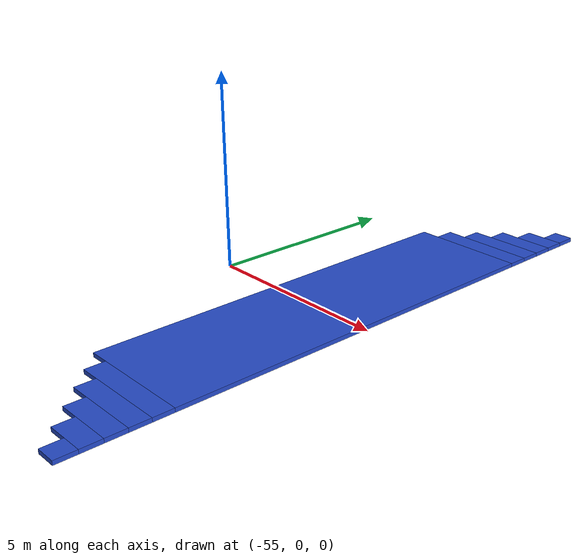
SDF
<sdf version="1.7">
 <world name="sehir_dunyasi_final_son_hali">
  <model name="durak_cebi_bati">
   <static>1</static>
   <pose>-50 0 0.1 0 -0 0</pose>
   <link name="link">
    <visual name="visual_center">
     <pose>-1.5 0 0 0 -0 0</pose>
     <geometry><box><size>3 10 0.1</size></box></geometry>
     <material><script><name>Gazebo/Blue</name><uri>__default__</uri></script></material>
    </visual>
    <collision name="collision_center">
     <pose>-1.5 0 0 0 -0 0</pose>
     <geometry><box><size>3 10 0.1</size></box></geometry>
    </collision>
    <visual name="v_t1">
     <pose>-1.25 5.25 0 0 -0 0</pose>
     <geometry><box><size>2.5 0.5 0.1</size></box></geometry>
     <material><script><name>Gazebo/Blue</name><uri>__default__</uri></script></material>
    </visual>
    <visual name="v_t2">
     <pose>-1 5.75 0 0 -0 0</pose>
     <geometry><box><size>2 0.5 0.1</size></box></geometry>
     <material><script><name>Gazebo/Blue</name><uri>__default__</uri></script></material>
    </visual>
    <visual name="v_t3">
     <pose>-0.75 6.25 0 0 -0 0</pose>
     <geometry><box><size>1.5 0.5 0.1</size></box></geometry>
     <material><script><name>Gazebo/Blue</name><uri>__default__</uri></script></material>
    </visual>
    <visual name="v_t4">
     <pose>-0.5 6.75 0 0 -0 0</pose>
     <geometry><box><size>1 0.5 0.1</size></box></geometry>
     <material><script><name>Gazebo/Blue</name><uri>__default__</uri></script></material>
    </visual>
    <visual name="v_t5">
     <pose>-0.25 7.25 0 0 -0 0</pose>
     <geometry><box><size>0.5 0.5 0.1</size></box></geometry>
     <material><script><name>Gazebo/Blue</name><uri>__default__</uri></script></material>
    </visual>
    <collision name="c_t1">
     <pose>-1.25 5.25 0 0 -0 0</pose>
     <geometry><box><size>2.5 0.5 0.1</size></box></geometry>
    </collision>
    <collision name="c_t2">
     <pose>-1 5.75 0 0 -0 0</pose>
     <geometry><box><size>2 0.5 0.1</size></box></geometry>
    </collision>
    <collision name="c_t3">
     <pose>-0.75 6.25 0 0 -0 0</pose>
     <geometry><box><size>1.5 0.5 0.1</size></box></geometry>
    </collision>
    <collision name="c_t4">
     <pose>-0.5 6.75 0 0 -0 0</pose>
     <geometry><box><size>1 0.5 0.1</size></box></geometry>
    </collision>
    <collision name="c_t5">
     <pose>-0.25 7.25 0 0 -0 0</pose>
     <geometry><box><size>0.5 0.5 0.1</size></box></geometry>
    </collision>
    <visual name="v_b1">
     <pose>-1.25 -5.25 0 0 -0 0</pose>
     <geometry><box><size>2.5 0.5 0.1</size></box></geometry>
     <material><script><name>Gazebo/Blue</name><uri>__default__</uri></script></material>
    </visual>
    <visual name="v_b2">
     <pose>-1 -5.75 0 0 -0 0</pose>
     <geometry><box><size>2 0.5 0.1</size></box></geometry>
     <material><script><name>Gazebo/Blue</name><uri>__default__</uri></script></material>
    </visual>
    <visual name="v_b3">
     <pose>-0.75 -6.25 0 0 -0 0</pose>
     <geometry><box><size>1.5 0.5 0.1</size></box></geometry>
     <material><script><name>Gazebo/Blue</name><uri>__default__</uri></script></material>
    </visual>
    <visual name="v_b4">
     <pose>-0.5 -6.75 0 0 -0 0</pose>
     <geometry><box><size>1 0.5 0.1</size></box></geometry>
     <material><script><name>Gazebo/Blue</name><uri>__default__</uri></script></material>
    </visual>
    <visual name="v_b5">
     <pose>-0.25 -7.25 0 0 -0 0</pose>
     <geometry><box><size>0.5 0.5 0.1</size></box></geometry>
     <material><script><name>Gazebo/Blue</name><uri>__default__</uri></script></material>
    </visual>
    <collision name="c_b1">
     <pose>-1.25 -5.25 0 0 -0 0</pose>
     <geometry><box><size>2.5 0.5 0.1</size></box></geometry>
    </collision>
    <collision name="c_b2">
     <pose>-1 -5.75 0 0 -0 0</pose>
     <geometry><box><size>2 0.5 0.1</size></box></geometry>
    </collision>
    <collision name="c_b3">
     <pose>-0.75 -6.25 0 0 -0 0</pose>
     <geometry><box><size>1.5 0.5 0.1</size></box></geometry>
    </collision>
    <collision name="c_b4">
     <pose>-0.5 -6.75 0 0 -0 0</pose>
     <geometry><box><size>1 0.5 0.1</size></box></geometry>
    </collision>
    <collision name="c_b5">
     <pose>-0.25 -7.25 0 0 -0 0</pose>
     <geometry><box><size>0.5 0.5 0.1</size></box></geometry>
    </collision>
   </link>
  </model>
 </world>
</sdf>
